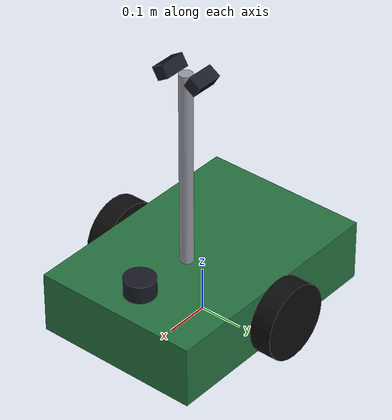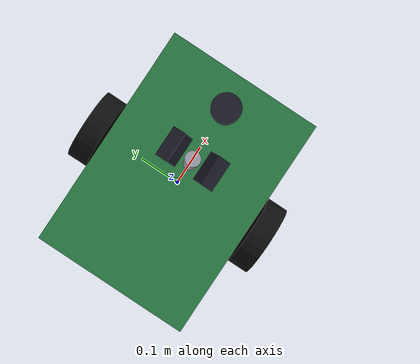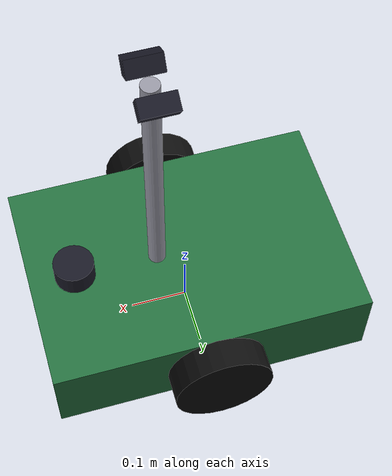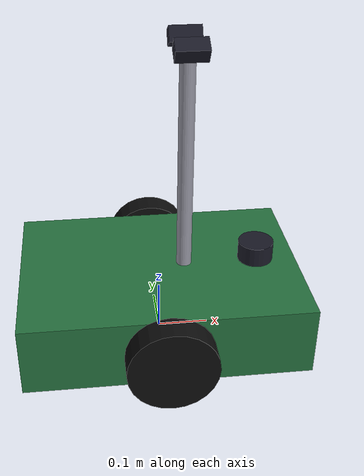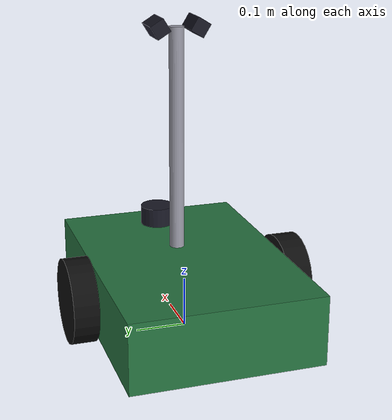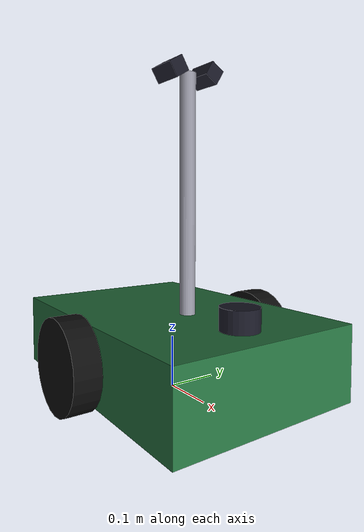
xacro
<?xml version="1.0"?>
<robot xmlns:xacro="http://www.ros.org/wiki/xacro" name="strawberry_robot">

  <!-- ===== parameters ===== -->
  <xacro:property name="body_l" value="0.55"/>
  <xacro:property name="body_w" value="0.38"/>
  <xacro:property name="body_h" value="0.14"/>
  <xacro:property name="body_m" value="12.0"/>
  <xacro:property name="wheel_r" value="0.085"/>
  <xacro:property name="wheel_w" value="0.05"/>
  <xacro:property name="wheel_m" value="0.8"/>
  <xacro:property name="wheel_sep" value="0.44"/>
  <xacro:property name="caster_r" value="0.03"/>
  <xacro:property name="ground_clear" value="0.03"/>
  <xacro:property name="mast_h" value="0.45"/>

  <material name="body_mat"><color rgba="0.15 0.45 0.25 1"/></material>
  <material name="wheel_mat"><color rgba="0.05 0.05 0.05 1"/></material>
  <material name="metal_mat"><color rgba="0.6 0.6 0.65 1"/></material>
  <material name="sensor_mat"><color rgba="0.1 0.1 0.15 1"/></material>

  <!-- ===== inertia helpers ===== -->
  <xacro:macro name="box_inertia" params="m x y z">
    <inertia ixx="${m*(y*y+z*z)/12}" iyy="${m*(x*x+z*z)/12}" izz="${m*(x*x+y*y)/12}" ixy="0" ixz="0" iyz="0"/>
  </xacro:macro>
  <xacro:macro name="cyl_inertia" params="m r h">
    <inertia ixx="${m*(3*r*r+h*h)/12}" iyy="${m*(3*r*r+h*h)/12}" izz="${m*r*r/2}" ixy="0" ixz="0" iyz="0"/>
  </xacro:macro>
  <xacro:macro name="sphere_inertia" params="m r">
    <inertia ixx="${2*m*r*r/5}" iyy="${2*m*r*r/5}" izz="${2*m*r*r/5}" ixy="0" ixz="0" iyz="0"/>
  </xacro:macro>

  <!-- ===== base ===== -->
  <link name="base_footprint"/>

  <link name="base_link">
    <visual>
      <geometry><box size="${body_l} ${body_w} ${body_h}"/></geometry>
      <material name="body_mat"/>
    </visual>
    <collision>
      <geometry><box size="${body_l} ${body_w} ${body_h}"/></geometry>
    </collision>
    <inertial>
      <mass value="${body_m}"/>
      <xacro:box_inertia m="${body_m}" x="${body_l}" y="${body_w}" z="${body_h}"/>
    </inertial>
  </link>

  <!-- chassis centre sits so wheels touch the ground -->
  <joint name="base_joint" type="fixed">
    <parent link="base_footprint"/>
    <child link="base_link"/>
    <origin xyz="0 0 ${wheel_r}" rpy="0 0 0"/>
  </joint>

  <!-- ===== drive wheels ===== -->
  <xacro:macro name="drive_wheel" params="name y">
    <link name="${name}_wheel">
      <visual>
        <origin rpy="${pi/2} 0 0"/>
        <geometry><cylinder radius="${wheel_r}" length="${wheel_w}"/></geometry>
        <material name="wheel_mat"/>
      </visual>
      <collision>
        <origin rpy="${pi/2} 0 0"/>
        <geometry><cylinder radius="${wheel_r}" length="${wheel_w}"/></geometry>
      </collision>
      <inertial>
        <origin rpy="${pi/2} 0 0"/>
        <mass value="${wheel_m}"/>
        <xacro:cyl_inertia m="${wheel_m}" r="${wheel_r}" h="${wheel_w}"/>
      </inertial>
    </link>
    <joint name="${name}_wheel_joint" type="continuous">
      <parent link="base_link"/>
      <child link="${name}_wheel"/>
      <origin xyz="0 ${y} 0" rpy="0 0 0"/>
      <axis xyz="0 1 0"/>
      <dynamics damping="0.05" friction="0.02"/>
    </joint>
    <gazebo reference="${name}_wheel">
      <collision>
        <surface>
          <friction><ode><mu>1.0</mu><mu2>1.0</mu2></ode></friction>
        </surface>
      </collision>
    </gazebo>
  </xacro:macro>

  <xacro:drive_wheel name="left"  y="${wheel_sep/2}"/>
  <xacro:drive_wheel name="right" y="${-wheel_sep/2}"/>

  <!-- ===== casters (frictionless spheres) ===== -->
  <xacro:macro name="caster" params="name x">
    <link name="${name}_caster">
      <visual><geometry><sphere radius="${caster_r}"/></geometry><material name="metal_mat"/></visual>
      <collision><geometry><sphere radius="${caster_r}"/></geometry></collision>
      <inertial>
        <mass value="0.1"/>
        <xacro:sphere_inertia m="0.1" r="${caster_r}"/>
      </inertial>
    </link>
    <joint name="${name}_caster_joint" type="fixed">
      <parent link="base_link"/>
      <child link="${name}_caster"/>
      <origin xyz="${x} 0 ${-(wheel_r - caster_r)}"/>
    </joint>
    <gazebo reference="${name}_caster">
      <collision>
        <surface>
          <friction><ode><mu>0.0</mu><mu2>0.0</mu2></ode></friction>
        </surface>
      </collision>
    </gazebo>
  </xacro:macro>

  <xacro:caster name="front" x="${body_l/2 - 0.06}"/>
  <xacro:caster name="rear"  x="${-body_l/2 + 0.06}"/>

  <!-- ===== sensor mast ===== -->
  <link name="mast_link">
    <visual>
      <origin xyz="0 0 ${mast_h/2}"/>
      <geometry><cylinder radius="0.015" length="${mast_h}"/></geometry>
      <material name="metal_mat"/>
    </visual>
    <inertial>
      <origin xyz="0 0 ${mast_h/2}"/>
      <mass value="0.5"/>
      <xacro:cyl_inertia m="0.5" r="0.015" h="${mast_h}"/>
    </inertial>
  </link>
  <joint name="mast_joint" type="fixed">
    <parent link="base_link"/>
    <child link="mast_link"/>
    <origin xyz="0.05 0 ${body_h/2}"/>
  </joint>

  <!-- ===== LiDAR (front of the deck) ===== -->
  <link name="lidar_link">
    <visual>
      <geometry><cylinder radius="0.035" length="0.04"/></geometry>
      <material name="sensor_mat"/>
    </visual>
    <inertial>
      <mass value="0.2"/>
      <xacro:cyl_inertia m="0.2" r="0.035" h="0.04"/>
    </inertial>
  </link>
  <joint name="lidar_joint" type="fixed">
    <parent link="base_link"/>
    <child link="lidar_link"/>
    <origin xyz="${body_l/2 - 0.08} 0 ${body_h/2 + 0.02}"/>
  </joint>
  <gazebo reference="lidar_link">
    <sensor name="lidar" type="gpu_lidar">
      <gz_frame_id>lidar_link</gz_frame_id>
      <topic>scan</topic>
      <update_rate>10</update_rate>
      <always_on>true</always_on>
      <visualize>false</visualize>
      <lidar>
        <scan>
          <horizontal>
            <samples>720</samples>
            <resolution>1</resolution>
            <min_angle>-3.14159</min_angle>
            <max_angle>3.14159</max_angle>
          </horizontal>
        </scan>
        <range><min>0.12</min><max>12.0</max><resolution>0.01</resolution></range>
        <noise><type>gaussian</type><mean>0.0</mean><stddev>0.01</stddev></noise>
      </lidar>
    </sensor>
  </gazebo>

  <!-- ===== IMU ===== -->
  <link name="imu_link">
    <inertial>
      <mass value="0.02"/>
      <xacro:box_inertia m="0.02" x="0.02" y="0.02" z="0.01"/>
    </inertial>
  </link>
  <joint name="imu_joint" type="fixed">
    <parent link="base_link"/>
    <child link="imu_link"/>
    <origin xyz="0 0 0.0"/>
  </joint>
  <gazebo reference="imu_link">
    <sensor name="imu" type="imu">
      <gz_frame_id>imu_link</gz_frame_id>
      <topic>imu</topic>
      <update_rate>100</update_rate>
      <always_on>true</always_on>
      <imu>
        <angular_velocity>
          <x><noise type="gaussian"><mean>0</mean><stddev>0.0008</stddev></noise></x>
          <y><noise type="gaussian"><mean>0</mean><stddev>0.0008</stddev></noise></y>
          <z><noise type="gaussian"><mean>0</mean><stddev>0.0008</stddev></noise></z>
        </angular_velocity>
        <linear_acceleration>
          <x><noise type="gaussian"><mean>0</mean><stddev>0.02</stddev></noise></x>
          <y><noise type="gaussian"><mean>0</mean><stddev>0.02</stddev></noise></y>
          <z><noise type="gaussian"><mean>0</mean><stddev>0.02</stddev></noise></z>
        </linear_acceleration>
      </imu>
    </sensor>
  </gazebo>

  <!-- ===== side inspection cameras (look at the beds either side of the aisle) ===== -->
  <xacro:macro name="inspection_camera" params="name side">
    <!-- side = +1 (left, +y) or -1 (right, -y) -->
    <link name="${name}_camera_link">
      <visual>
        <geometry><box size="0.03 0.06 0.03"/></geometry>
        <material name="sensor_mat"/>
      </visual>
      <inertial>
        <mass value="0.05"/>
        <xacro:box_inertia m="0.05" x="0.03" y="0.06" z="0.03"/>
      </inertial>
    </link>
    <joint name="${name}_camera_joint" type="fixed">
      <parent link="mast_link"/>
      <child link="${name}_camera_link"/>
      <!-- yaw +-90 deg to face sideways, pitch 0.55 rad (~31 deg) to look down at the plants -->
      <origin xyz="0 ${side*0.04} ${mast_h}" rpy="0 0.55 ${side*pi/2}"/>
    </joint>
    <gazebo reference="${name}_camera_link">
      <sensor name="${name}_camera" type="camera">
        <gz_frame_id>${name}_camera_link</gz_frame_id>
        <topic>${name}_camera/image_raw</topic>
        <camera_info_topic>${name}_camera/camera_info</camera_info_topic>
        <update_rate>10</update_rate>
        <always_on>true</always_on>
        <camera>
          <horizontal_fov>1.31</horizontal_fov>
          <image>
            <width>1280</width>
            <height>720</height>
            <format>R8G8B8</format>
          </image>
          <clip><near>0.1</near><far>6.0</far></clip>
          <noise><type>gaussian</type><mean>0.0</mean><stddev>0.007</stddev></noise>
        </camera>
      </sensor>
    </gazebo>
  </xacro:macro>

  <xacro:inspection_camera name="left"  side="1"/>
  <xacro:inspection_camera name="right" side="-1"/>

  <!-- ===== Gazebo plugins ===== -->
  <gazebo>
    <plugin filename="gz-sim-diff-drive-system" name="gz::sim::systems::DiffDrive">
      <left_joint>left_wheel_joint</left_joint>
      <right_joint>right_wheel_joint</right_joint>
      <wheel_separation>${wheel_sep}</wheel_separation>
      <wheel_radius>${wheel_r}</wheel_radius>
      <odom_publish_frequency>50</odom_publish_frequency>
      <topic>cmd_vel</topic>
      <odom_topic>odom</odom_topic>
      <tf_topic>tf</tf_topic>
      <frame_id>odom</frame_id>
      <child_frame_id>base_footprint</child_frame_id>
      <max_linear_velocity>1.0</max_linear_velocity>
      <min_linear_velocity>-1.0</min_linear_velocity>
      <max_angular_velocity>2.0</max_angular_velocity>
      <min_angular_velocity>-2.0</min_angular_velocity>
      <max_linear_acceleration>1.0</max_linear_acceleration>
      <min_linear_acceleration>-1.0</min_linear_acceleration>
    </plugin>
    <plugin filename="gz-sim-joint-state-publisher-system" name="gz::sim::systems::JointStatePublisher"/>
  </gazebo>

</robot>
